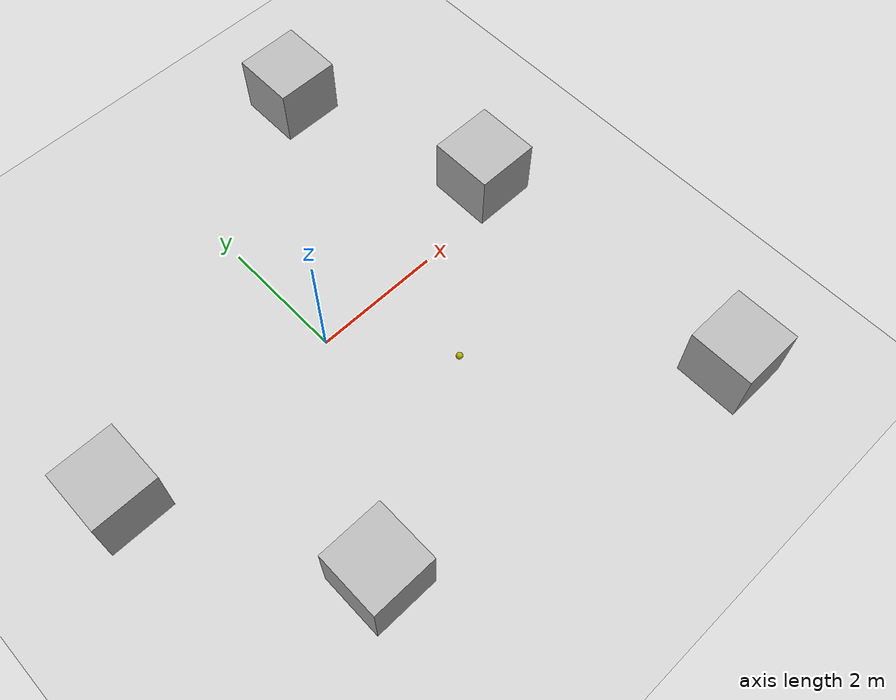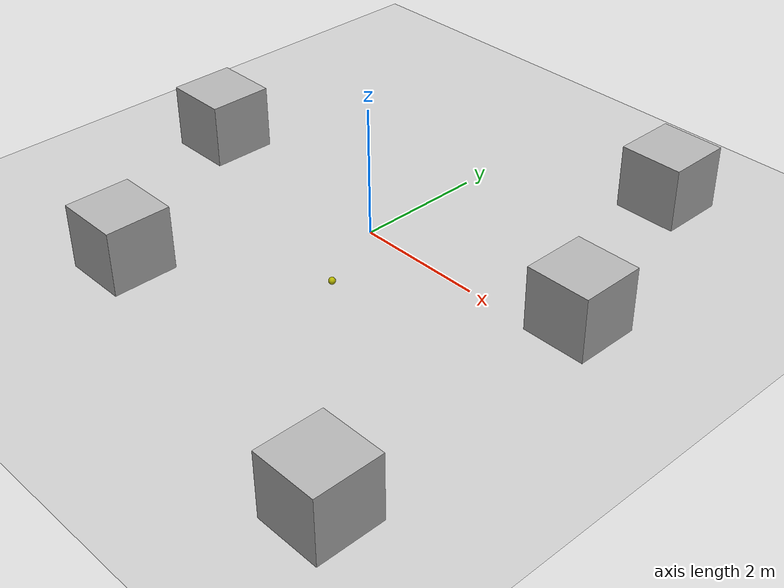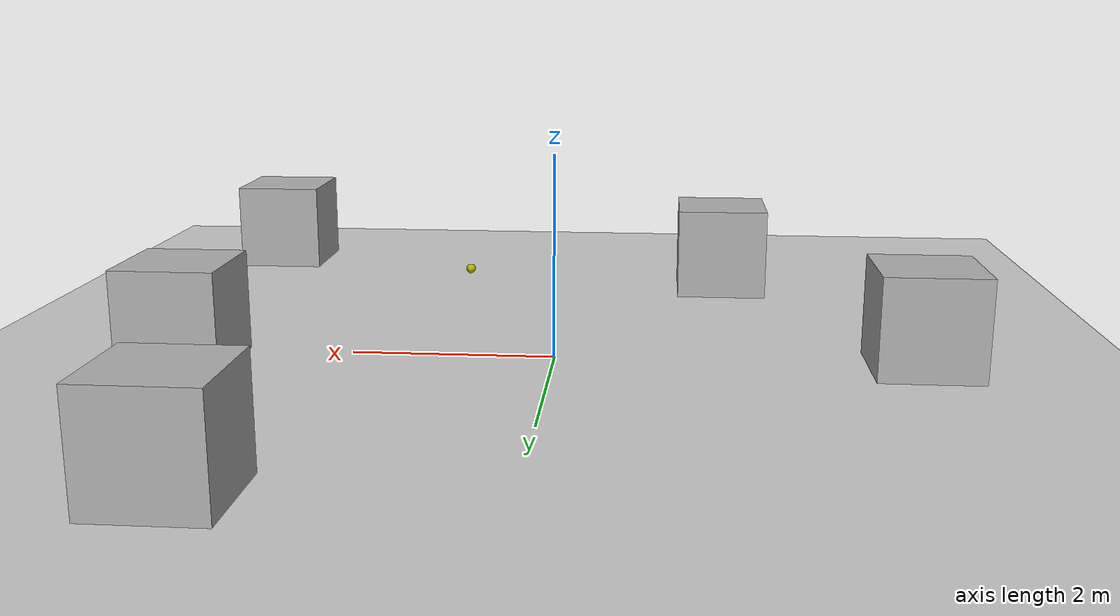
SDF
<sdf version="1.10">
 <world name="empty">
  <physics name="1ms" type="ignored">
   <max_step_size>0.001</max_step_size>
   <real_time_factor>1</real_time_factor>
   <real_time_update_rate>1000</real_time_update_rate>
  </physics>
  <plugin name="gz::sim::systems::Sensors" filename="gz-sim-sensors-system">
   <render_engine>ogre2</render_engine>
  </plugin>
  <plugin filename="gz-sim-imu-system" name="gz::sim::systems::Imu"/>
  <plugin name="gz::sim::systems::Physics" filename="gz-sim-physics-system"/>
  <plugin name="gz::sim::systems::UserCommands" filename="gz-sim-user-commands-system"/>
  <plugin name="gz::sim::systems::SceneBroadcaster" filename="gz-sim-scene-broadcaster-system"/>
  <plugin name="gz::sim::systems::Contact" filename="gz-sim-contact-system"/>
  <gravity>0 0 -9.8000000000000007</gravity>
  <magnetic_field>5.5644999999999998e-06 2.2875799999999999e-05 -4.2388400000000002e-05</magnetic_field>
  <atmosphere type="adiabatic"/>
  <scene>
   <ambient>0.400000006 0.400000006 0.400000006 1</ambient>
   <background>0.699999988 0.699999988 0.699999988 1</background>
   <shadows>true</shadows>
  </scene>
  <model name="ground_plane">
   <static>true</static>
   <link name="link">
    <collision name="collision">
     <geometry><plane><normal>0 0 1</normal><size>100 100</size></plane></geometry>
    </collision>
    <visual name="visual">
     <geometry><plane><normal>0 0 1</normal><size>100 100</size></plane></geometry>
     <material>
      <ambient>0.800000012 0.800000012 0.800000012 1</ambient>
      <diffuse>0.800000012 0.800000012 0.800000012 1</diffuse>
      <specular>0.800000012 0.800000012 0.800000012 1</specular>
     </material>
    </visual>
    <inertial>
     <mass>1</mass>
     <inertia><ixx>1</ixx><ixy>0</ixy><ixz>0</ixz><iyy>1</iyy><iyz>0</iyz><izz>1</izz></inertia>
    </inertial>
   </link>
  </model>
  <model name="box">
   <pose>2.4876415223052164 3.6734130864467103 0.5 0 0 0</pose>
   <link name="box_link">
    <inertial>
     <inertia><ixx>0.16666</ixx><ixy>0</ixy><ixz>0</ixz><iyy>0.16666</iyy><iyz>0</iyz><izz>0.16666</izz></inertia>
     <mass>1</mass>
    </inertial>
    <collision name="box_collision"><geometry><box><size>1 1 1</size></box></geometry></collision>
    <visual name="box_visual">
     <geometry><box><size>1 1 1</size></box></geometry>
     <material>
      <ambient>0.300000012 0.300000012 0.300000012 1</ambient>
      <diffuse>0.699999988 0.699999988 0.699999988 1</diffuse>
      <specular>1 1 1 1</specular>
     </material>
    </visual>
   </link>
   <static>false</static>
  </model>
  <model name="box_0">
   <pose>3.8309626696592733 -4.2372789255766499 0.5 0 0 0</pose>
   <link name="box_link">
    <inertial>
     <inertia><ixx>0.16666</ixx><ixy>0</ixy><ixz>0</ixz><iyy>0.16666</iyy><iyz>0</iyz><izz>0.16666</izz></inertia>
     <mass>1</mass>
    </inertial>
    <collision name="box_collision"><geometry><box><size>1 1 1</size></box></geometry></collision>
    <visual name="box_visual">
     <geometry><box><size>1 1 1</size></box></geometry>
     <material>
      <ambient>0.300000012 0.300000012 0.300000012 1</ambient>
      <diffuse>0.699999988 0.699999988 0.699999988 1</diffuse>
      <specular>1 1 1 1</specular>
     </material>
    </visual>
   </link>
   <static>false</static>
  </model>
  <model name="box_1">
   <pose>3.5656172215808652 0.40631379695630315 0.5 0 0 0</pose>
   <link name="box_link">
    <inertial>
     <inertia><ixx>0.16666</ixx><ixy>0</ixy><ixz>0</ixz><iyy>0.16666</iyy><iyz>0</iyz><izz>0.16666</izz></inertia>
     <mass>1</mass>
    </inertial>
    <collision name="box_collision"><geometry><box><size>1 1 1</size></box></geometry></collision>
    <visual name="box_visual">
     <geometry><box><size>1 1 1</size></box></geometry>
     <material>
      <ambient>0.300000012 0.300000012 0.300000012 1</ambient>
      <diffuse>0.699999988 0.699999988 0.699999988 1</diffuse>
      <specular>1 1 1 1</specular>
     </material>
    </visual>
   </link>
   <static>false</static>
  </model>
  <model name="box_2">
   <pose>-3.5158625206749323 0.058047673308557091 0.5 0 0 0</pose>
   <link name="box_link">
    <inertial>
     <inertia><ixx>0.16666</ixx><ixy>0</ixy><ixz>0</ixz><iyy>0.16666</iyy><iyz>0</iyz><izz>0.16666</izz></inertia>
     <mass>1</mass>
    </inertial>
    <collision name="box_collision"><geometry><box><size>1 1 1</size></box></geometry></collision>
    <visual name="box_visual">
     <geometry><box><size>1 1 1</size></box></geometry>
     <material>
      <ambient>0.300000012 0.300000012 0.300000012 1</ambient>
      <diffuse>0.699999988 0.699999988 0.699999988 1</diffuse>
      <specular>1 1 1 1</specular>
     </material>
    </visual>
   </link>
   <static>false</static>
  </model>
  <model name="box_3">
   <pose>-1.7247636490936975 -3.0597939778856937 0.5 0 0 0</pose>
   <link name="box_link">
    <inertial>
     <inertia><ixx>0.16666</ixx><ixy>0</ixy><ixz>0</ixz><iyy>0.16666</iyy><iyz>0</iyz><izz>0.16666</izz></inertia>
     <mass>1</mass>
    </inertial>
    <collision name="box_collision"><geometry><box><size>1 1 1</size></box></geometry></collision>
    <visual name="box_visual">
     <geometry><box><size>1 1 1</size></box></geometry>
     <material>
      <ambient>0.300000012 0.300000012 0.300000012 1</ambient>
      <diffuse>0.699999988 0.699999988 0.699999988 1</diffuse>
      <specular>1 1 1 1</specular>
     </material>
    </visual>
   </link>
   <static>false</static>
  </model>
  <model name="sphere">
   <pose>1.0559996286295528 -1.6431803943586663 0.5 0 0 0</pose>
   <link name="sphere_link">
    <inertial>
     <inertia>
      <ixx>0.10000000000000001</ixx>
      <ixy>0</ixy>
      <ixz>0</ixz>
      <iyy>0.10000000000000001</iyy>
      <iyz>0</iyz>
      <izz>0.10000000000000001</izz>
     </inertia>
     <mass>1</mass>
    </inertial>
    <collision name="sphere_collision"><geometry><sphere><radius>0.05</radius></sphere></geometry></collision>
    <visual name="sphere_visual">
     <geometry><sphere><radius>0.05</radius></sphere></geometry>
     <material><ambient>0.3 0.3 0 1</ambient><diffuse>0.7 0.7 0 1</diffuse><specular>1 1 1 1</specular></material>
    </visual>
   </link>
   <static>false</static>
  </model>
  <light name="sun" type="directional">
   <pose>0 0 10 0 0 0</pose>
   <intensity>1</intensity>
   <direction>-0.5 0.10000000000000001 -0.90000000000000002</direction>
   <diffuse>0.800000012 0.800000012 0.800000012 1</diffuse>
   <specular>0.200000003 0.200000003 0.200000003 1</specular>
   <attenuation>
    <range>1000</range>
    <linear>0.01</linear>
    <constant>0.90000000000000002</constant>
    <quadratic>0.001</quadratic>
   </attenuation>
   <spot><inner_angle>0</inner_angle><outer_angle>0</outer_angle><falloff>0</falloff></spot>
  </light>
 </world>
</sdf>
